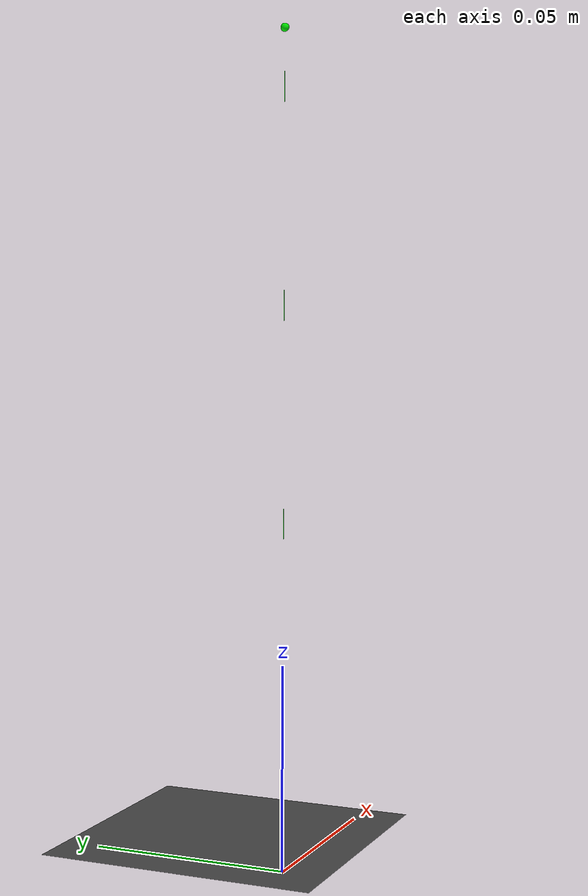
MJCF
<mujoco model="SIP model">
	<worldbody>
        <light diffuse=".5 .5 .5" pos="0 0 3" dir="0 0 -1"/>
		<geom name="terrain" type="plane" pos="0 0 0.0" size="1 0.25 0.0001" contype="1"  conaffinity="1" solref="-163.5 -10" solimp="0.0 0.9 0.006 0.5 2" priority="1" rgba="0.3 0.3 0.3 0.75"/>
		<geom name="virtual-terrain" type="plane" pos="0 0 1.0" size="1 0.25 0.0001" contype="0"  conaffinity="0" solref="-163.5 -10" solimp="0.0 0.9 0.006 0.5 2" priority="1" rgba="0.5 0.5 0.5 0.3"/>
		<body name ="com" pos="0 0 0.2" euler="0 0 0">
			<joint type="free"/>
			<geom type="sphere" pos="0 0 0" size="0.001"  mass="100" contype="0" conaffinity="0" rgba="0 .9 0 1"/>
			<geom type="capsule" pos="0 0 -0.1" size=".00001 .1"  mass="0" contype="0"  conaffinity="0" rgba="0 .9 0 1"/>
			<geom type="capsule" pos="0 0 -0.1" size=".00001 .1"  mass="0" contype="0"  conaffinity="0" rgba="0 .9 0 1"/>
			<geom type="capsule" pos="0 0 -0.1" size=".00001 .1"  mass="0" contype="0"  conaffinity="0" rgba="0 .9 0 1"/>
			<geom type="capsule" pos="0 0 -0.1" size=".00001 .1"  mass="0" contype="0"  conaffinity="0" rgba="0 .9 0 1"/>
			<geom type="sphere" pos="0 0 -0.2" size=".00001"  mass="0" contype="1" conaffinity="1" rgba="0.9 0 0 1"/>
			<geom type="sphere" pos="0 0 -0.2" size=".00001"  mass="0" contype="1" conaffinity="1" rgba="0.9 0 0 1"/>
			<geom type="sphere" pos="0 0 -0.2" size=".00001"  mass="0" contype="1" conaffinity="1" rgba="0.9 0 0 1"/>
			<geom type="sphere" pos="0 0 -0.2" size=".00001"  mass="0" contype="1" conaffinity="1" rgba="0.9 0 0 1"/>
			<geom type="sphere" pos="0 0 -0.2" size=".00001"  mass="0" contype="1" conaffinity="1" rgba="0.9 0 0 1"/>
			<geom type="sphere" pos="0 0 -0.2" size=".00001"  mass="0" contype="1" conaffinity="1" rgba="0.9 0 0 1"/>
			<geom type="sphere" pos="0 0 -0.2" size=".00001"  mass="0" contype="1" conaffinity="1" rgba="0.9 0 0 1"/>
			<geom type="sphere" pos="0 0 -0.2" size=".00001"  mass="0" contype="1" conaffinity="1" rgba="0.9 0 0 1"/>
		</body>
	</worldbody>
	<option timestep="0.0005" integrator="RK4" cone="elliptic" impratio="10"/>

</mujoco>
